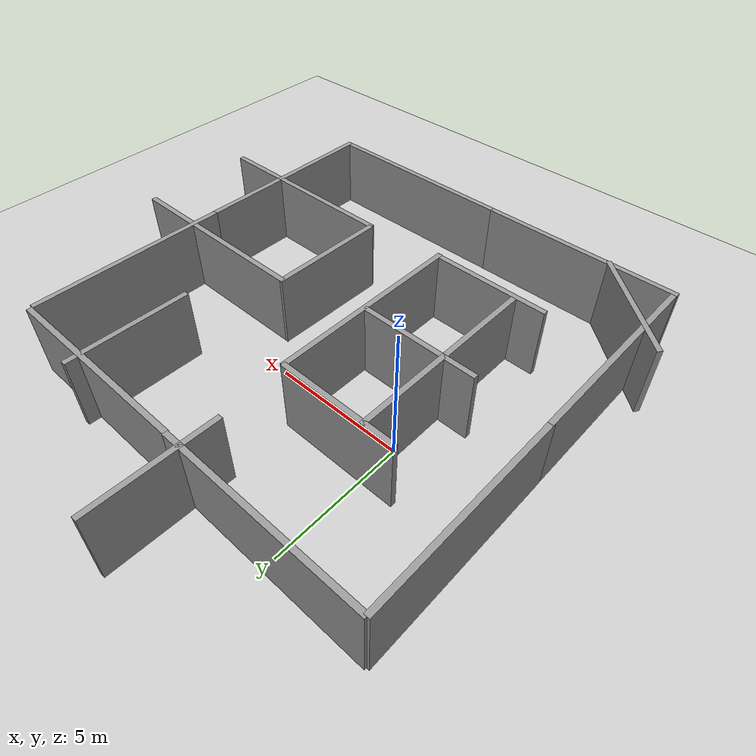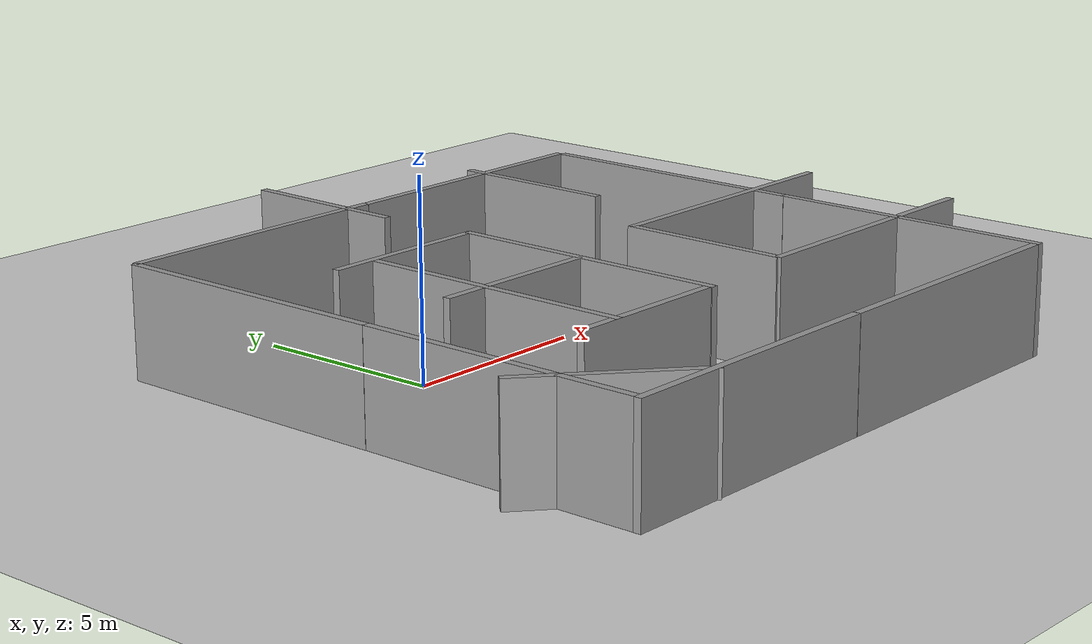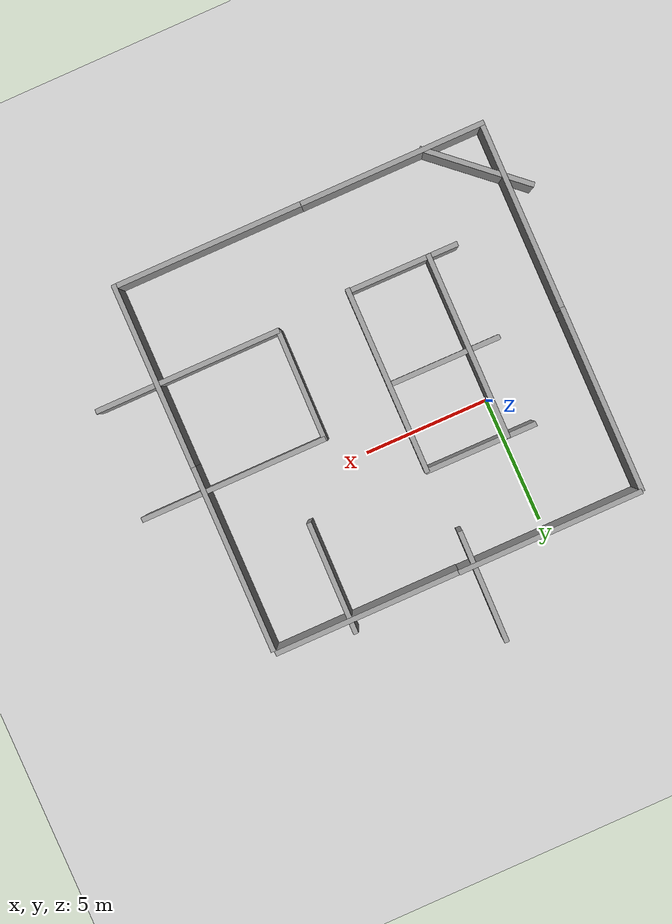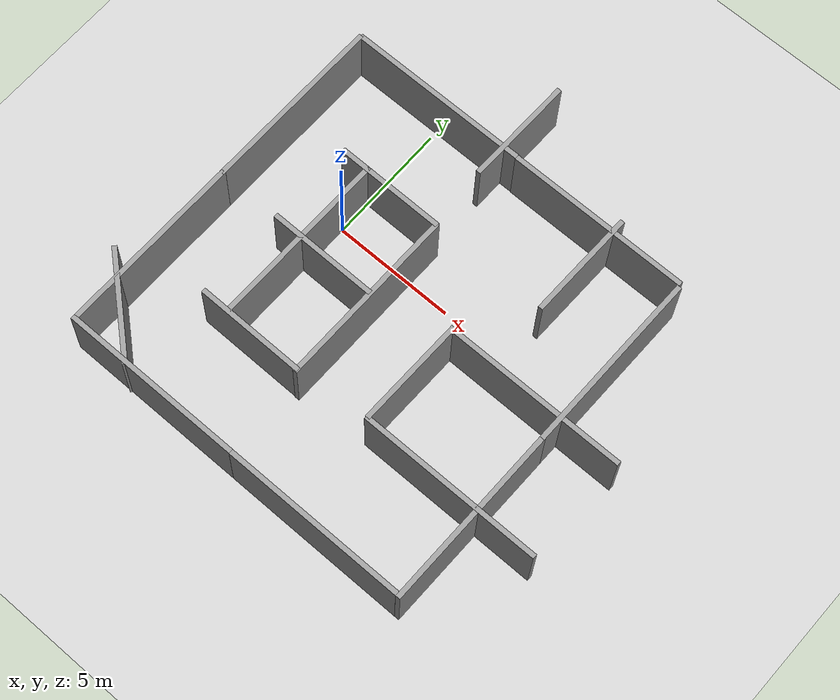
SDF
<sdf version="1.6">
 <world name="default">
  <light name="sun" type="directional">
   <pose>0 0 10 0 -0 0</pose>
   <diffuse>0.8 0.8 0.8 1</diffuse>
   <specular>0.2 0.2 0.2 1</specular>
   <attenuation>
    <range>1000</range>
    <constant>0.9</constant>
    <linear>0.01</linear>
    <quadratic>0.001</quadratic>
   </attenuation>
   <direction>-0.5 0.1 -0.9</direction>
  </light>
  <model name="ground_plane">
   <static>1</static>
   <link name="link">
    <collision name="collision">
     <geometry><plane><normal>0 0 1</normal><size>100 100</size></plane></geometry>
     <surface>
      <contact><collide_bitmask>65535</collide_bitmask></contact>
      <friction><ode><mu>100</mu><mu2>50</mu2></ode></friction>
     </surface>
    </collision>
    <visual name="visual">
     <cast_shadows>0</cast_shadows>
     <geometry><plane><normal>0 0 1</normal><size>100 100</size></plane></geometry>
     <material>
      <script><uri>file://media/materials/scripts/gazebo.material</uri><name>Gazebo/Grey</name></script>
     </material>
    </visual>
   </link>
  </model>
  <gravity>0 0 -9.8</gravity>
  <magnetic_field>6e-06 2.3e-05 -4.2e-05</magnetic_field>
  <atmosphere type="adiabatic"/>
  <physics name="default_physics" default="0" type="ode">
   <max_step_size>0.001</max_step_size>
   <real_time_factor>1</real_time_factor>
   <real_time_update_rate>1000</real_time_update_rate>
  </physics>
  <scene><ambient>0.4 0.4 0.4 1</ambient><background>0.7 0.7 0.7 1</background><shadows>1</shadows></scene>
  <audio><device>default</device></audio>
  <spherical_coordinates>
   <surface_model>EARTH_WGS84</surface_model>
   <latitude_deg>0</latitude_deg>
   <longitude_deg>0</longitude_deg>
   <elevation>0</elevation>
   <heading_deg>0</heading_deg>
  </spherical_coordinates>
  <model name="grey_wall">
   <static>1</static>
   <link name="link">
    <pose>0 0 1.4 0 -0 0</pose>
    <collision name="collision"><geometry><box><size>7.5 0.2 2.8</size></box></geometry></collision>
    <visual name="visual">
     <cast_shadows>0</cast_shadows>
     <geometry><box><size>7.5 0.2 2.8</size></box></geometry>
     <material>
      <script>
       <uri>model://grey_wall/materials/scripts</uri>
       <uri>model://grey_wall/materials/textures</uri>
       <name>vrc/grey_wall</name>
      </script>
     </material>
    </visual>
   </link>
   <pose>-0.088325 5.38933 0 0 -0 0</pose>
  </model>
  <model name="grey_wall_0">
   <static>1</static>
   <link name="link">
    <pose>0 0 1.4 0 -0 0</pose>
    <collision name="collision"><geometry><box><size>7.5 0.2 2.8</size></box></geometry></collision>
    <visual name="visual">
     <cast_shadows>0</cast_shadows>
     <geometry><box><size>7.5 0.2 2.8</size></box></geometry>
     <material>
      <script>
       <uri>model://grey_wall/materials/scripts</uri>
       <uri>model://grey_wall/materials/textures</uri>
       <name>vrc/grey_wall</name>
      </script>
     </material>
    </visual>
   </link>
   <pose>7.38796 5.37249 0 0 -0 0</pose>
  </model>
  <model name="grey_wall_1_clone_clone">
   <static>1</static>
   <link name="link">
    <pose>0 0 1.4 0 -0 0</pose>
    <collision name="collision"><geometry><box><size>7.5 0.2 2.8</size></box></geometry></collision>
    <visual name="visual">
     <cast_shadows>0</cast_shadows>
     <geometry><box><size>7.5 0.2 2.8</size></box></geometry>
     <material>
      <script>
       <uri>model://grey_wall/materials/scripts</uri>
       <uri>model://grey_wall/materials/textures</uri>
       <name>vrc/grey_wall</name>
      </script>
     </material>
    </visual>
   </link>
   <pose>-3.86179 1.65938 -0 0 -0 1.56317</pose>
  </model>
  <model name="grey_wall_1_clone_clone_0">
   <static>1</static>
   <link name="link">
    <pose>0 0 1.4 0 -0 0</pose>
    <collision name="collision"><geometry><box><size>7.5 0.2 2.8</size></box></geometry></collision>
    <visual name="visual">
     <cast_shadows>0</cast_shadows>
     <geometry><box><size>7.5 0.2 2.8</size></box></geometry>
     <material>
      <script>
       <uri>model://grey_wall/materials/scripts</uri>
       <uri>model://grey_wall/materials/textures</uri>
       <name>vrc/grey_wall</name>
      </script>
     </material>
    </visual>
   </link>
   <pose>-3.91378 -5.73656 -0 0 -0 1.56317</pose>
  </model>
  <model name="grey_wall_1_clone_clone_2">
   <static>1</static>
   <link name="link">
    <pose>0 0 1.4 0 -0 0</pose>
    <collision name="collision"><geometry><box><size>7.5 0.2 2.8</size></box></geometry></collision>
    <visual name="visual">
     <cast_shadows>0</cast_shadows>
     <geometry><box><size>7.5 0.2 2.8</size></box></geometry>
     <material>
      <script>
       <uri>model://grey_wall/materials/scripts</uri>
       <uri>model://grey_wall/materials/textures</uri>
       <name>vrc/grey_wall</name>
      </script>
     </material>
    </visual>
   </link>
   <pose>11.1345 1.51593 -0 0 -0 1.56317</pose>
  </model>
  <model name="grey_wall_1_clone_clone_3">
   <static>1</static>
   <link name="link">
    <pose>0 0 1.4 0 -0 0</pose>
    <collision name="collision"><geometry><box><size>7.5 0.2 2.8</size></box></geometry></collision>
    <visual name="visual">
     <cast_shadows>0</cast_shadows>
     <geometry><box><size>7.5 0.2 2.8</size></box></geometry>
     <material>
      <script>
       <uri>model://grey_wall/materials/scripts</uri>
       <uri>model://grey_wall/materials/textures</uri>
       <name>vrc/grey_wall</name>
      </script>
     </material>
    </visual>
   </link>
   <pose>11.0827 -5.9263 -0 0 -0 1.56317</pose>
  </model>
  <model name="grey_wall_0_clone">
   <static>1</static>
   <link name="link">
    <pose>0 0 1.4 0 -0 0</pose>
    <collision name="collision"><geometry><box><size>7.5 0.2 2.8</size></box></geometry></collision>
    <visual name="visual">
     <cast_shadows>0</cast_shadows>
     <geometry><box><size>7.5 0.2 2.8</size></box></geometry>
     <material>
      <script>
       <uri>model://grey_wall/materials/scripts</uri>
       <uri>model://grey_wall/materials/textures</uri>
       <name>vrc/grey_wall</name>
      </script>
     </material>
    </visual>
   </link>
   <pose>7.20499 -9.57988 0 0 -0 0</pose>
  </model>
  <model name="grey_wall_0_clone_0">
   <static>1</static>
   <link name="link">
    <pose>0 0 1.4 0 -0 0</pose>
    <collision name="collision"><geometry><box><size>7.5 0.2 2.8</size></box></geometry></collision>
    <visual name="visual">
     <cast_shadows>0</cast_shadows>
     <geometry><box><size>7.5 0.2 2.8</size></box></geometry>
     <material>
      <script>
       <uri>model://grey_wall/materials/scripts</uri>
       <uri>model://grey_wall/materials/textures</uri>
       <name>vrc/grey_wall</name>
      </script>
     </material>
    </visual>
   </link>
   <pose>-0.297747 -9.57626 0 0 -0 0</pose>
  </model>
  <model name="grey_wall_0_clone_2">
   <static>1</static>
   <link name="link">
    <pose>0 0 1.4 0 -0 0</pose>
    <collision name="collision"><geometry><box><size>7.5 0.2 2.8</size></box></geometry></collision>
    <visual name="visual">
     <cast_shadows>0</cast_shadows>
     <geometry><box><size>7.5 0.2 2.8</size></box></geometry>
     <material>
      <script>
       <uri>model://grey_wall/materials/scripts</uri>
       <uri>model://grey_wall/materials/textures</uri>
       <name>vrc/grey_wall</name>
      </script>
     </material>
    </visual>
   </link>
   <pose>9.83483 -5.60108 0 0 -0 0</pose>
  </model>
  <model name="grey_wall_0_clone_3">
   <static>1</static>
   <link name="link">
    <pose>0 0 1.4 0 -0 0</pose>
    <collision name="collision"><geometry><box><size>7.5 0.2 2.8</size></box></geometry></collision>
    <visual name="visual">
     <cast_shadows>0</cast_shadows>
     <geometry><box><size>7.5 0.2 2.8</size></box></geometry>
     <material>
      <script>
       <uri>model://grey_wall/materials/scripts</uri>
       <uri>model://grey_wall/materials/textures</uri>
       <name>vrc/grey_wall</name>
      </script>
     </material>
    </visual>
   </link>
   <pose>9.90655 -1.20844 0 0 -0 0</pose>
  </model>
  <model name="grey_wall_1_clone_clone_3_clone">
   <static>1</static>
   <link name="link">
    <pose>0 0 1.4 0 -0 0</pose>
    <collision name="collision"><geometry><box><size>7.5 0.2 2.8</size></box></geometry></collision>
    <visual name="visual">
     <cast_shadows>0</cast_shadows>
     <geometry><box><size>7.5 0.2 2.8</size></box></geometry>
     <material>
      <script>
       <uri>model://grey_wall/materials/scripts</uri>
       <uri>model://grey_wall/materials/textures</uri>
       <name>vrc/grey_wall</name>
      </script>
     </material>
    </visual>
   </link>
   <pose>3.17189 -2.24273 -0 0 -0 1.56317</pose>
  </model>
  <model name="grey_wall_1_clone_clone_3_clone_0_clone_0">
   <static>1</static>
   <link name="link">
    <pose>0 0 1.4 0 -0 0</pose>
    <collision name="collision"><geometry><box><size>7.5 0.2 2.8</size></box></geometry></collision>
    <visual name="visual">
     <cast_shadows>0</cast_shadows>
     <geometry><box><size>7.5 0.2 2.8</size></box></geometry>
     <material>
      <script>
       <uri>model://grey_wall/materials/scripts</uri>
       <uri>model://grey_wall/materials/textures</uri>
       <name>vrc/grey_wall</name>
      </script>
     </material>
    </visual>
   </link>
   <pose>-0.100653 -2.19519 -0 0 -0 1.56317</pose>
  </model>
  <model name="grey_wall_0_clone_4_clone">
   <link name="link">
    <pose>0 0 1.4 0 -0 0</pose>
    <inertial>
     <mass>1</mass>
     <inertia><ixx>1</ixx><ixy>0</ixy><ixz>0</ixz><iyy>1</iyy><iyz>0</iyz><izz>1</izz></inertia>
    </inertial>
    <visual name="visual">
     <cast_shadows>0</cast_shadows>
     <geometry><box><size>4.5 0.2 2.8</size></box></geometry>
     <material>
      <script>
       <uri>model://grey_wall/materials/scripts</uri>
       <uri>model://grey_wall/materials/textures</uri>
       <name>vrc/grey_wall</name>
      </script>
      <shader type="vertex"><normal_map>__default__</normal_map></shader>
      <ambient>1 1 1 1</ambient>
      <diffuse>1 1 1 1</diffuse>
      <specular>0 0 0 1</specular>
      <emissive>0 0 0 1</emissive>
     </material>
    </visual>
    <collision name="collision">
     <geometry><box><size>4.5 0.2 2.8</size></box></geometry>
     <surface>
      <friction>
       <ode><mu>1</mu><mu2>1</mu2><fdir1>0 0 0</fdir1><slip1>0</slip1><slip2>0</slip2></ode>
       <torsional>
        <coefficient>1</coefficient>
        <patch_radius>0</patch_radius>
        <surface_radius>0</surface_radius>
        <use_patch_radius>1</use_patch_radius>
        <ode><slip>0</slip></ode>
       </torsional>
      </friction>
      <bounce><restitution_coefficient>0</restitution_coefficient><threshold>1e+06</threshold></bounce>
      <contact>
       <collide_without_contact>0</collide_without_contact>
       <collide_without_contact_bitmask>1</collide_without_contact_bitmask>
       <collide_bitmask>1</collide_bitmask>
       <ode>
        <soft_cfm>0</soft_cfm>
        <soft_erp>0.2</soft_erp>
        <kp>1e+13</kp>
        <kd>1</kd>
        <max_vel>0.01</max_vel>
        <min_depth>0</min_depth>
       </ode>
       <bullet>
        <split_impulse>1</split_impulse>
        <split_impulse_penetration_threshold>-0.01</split_impulse_penetration_threshold>
        <soft_cfm>0</soft_cfm>
        <soft_erp>0.2</soft_erp>
        <kp>1e+13</kp>
        <kd>1</kd>
       </bullet>
      </contact>
     </surface>
    </collision>
   </link>
   <static>1</static>
   <pose>0.996216 1.46694 -0 0 -0 3.1349</pose>
  </model>
  <model name="grey_wall_0_clone_4_clone_clone">
   <link name="link">
    <pose>0 0 1.4 0 -0 0</pose>
    <inertial>
     <mass>1</mass>
     <inertia><ixx>1</ixx><ixy>0</ixy><ixz>0</ixz><iyy>1</iyy><iyz>0</iyz><izz>1</izz></inertia>
    </inertial>
    <visual name="visual">
     <cast_shadows>0</cast_shadows>
     <geometry><box><size>4.5 0.2 2.8</size></box></geometry>
     <material>
      <script>
       <uri>model://grey_wall/materials/scripts</uri>
       <uri>model://grey_wall/materials/textures</uri>
       <name>vrc/grey_wall</name>
      </script>
      <shader type="vertex"><normal_map>__default__</normal_map></shader>
      <ambient>1 1 1 1</ambient>
      <diffuse>1 1 1 1</diffuse>
      <specular>0 0 0 1</specular>
      <emissive>0 0 0 1</emissive>
     </material>
    </visual>
    <collision name="collision">
     <geometry><box><size>4.5 0.2 2.8</size></box></geometry>
     <surface>
      <friction>
       <ode><mu>1</mu><mu2>1</mu2><fdir1>0 0 0</fdir1><slip1>0</slip1><slip2>0</slip2></ode>
       <torsional>
        <coefficient>1</coefficient>
        <patch_radius>0</patch_radius>
        <surface_radius>0</surface_radius>
        <use_patch_radius>1</use_patch_radius>
        <ode><slip>0</slip></ode>
       </torsional>
      </friction>
      <bounce><restitution_coefficient>0</restitution_coefficient><threshold>1e+06</threshold></bounce>
      <contact>
       <collide_without_contact>0</collide_without_contact>
       <collide_without_contact_bitmask>1</collide_without_contact_bitmask>
       <collide_bitmask>1</collide_bitmask>
       <ode>
        <soft_cfm>0</soft_cfm>
        <soft_erp>0.2</soft_erp>
        <kp>1e+13</kp>
        <kd>1</kd>
        <max_vel>0.01</max_vel>
        <min_depth>0</min_depth>
       </ode>
       <bullet>
        <split_impulse>1</split_impulse>
        <split_impulse_penetration_threshold>-0.01</split_impulse_penetration_threshold>
        <soft_cfm>0</soft_cfm>
        <soft_erp>0.2</soft_erp>
        <kp>1e+13</kp>
        <kd>1</kd>
       </bullet>
      </contact>
     </surface>
    </collision>
   </link>
   <static>1</static>
   <pose>0.947046 -5.85727 -0 0 -0 3.1349</pose>
  </model>
  <model name="grey_wall_0_clone_4_clone_clone_clone">
   <link name="link">
    <pose>0 0 1.4 0 -0 0</pose>
    <inertial>
     <mass>1</mass>
     <inertia><ixx>1</ixx><ixy>0</ixy><ixz>0</ixz><iyy>1</iyy><iyz>0</iyz><izz>1</izz></inertia>
    </inertial>
    <visual name="visual">
     <cast_shadows>0</cast_shadows>
     <geometry><box><size>4.5 0.2 2.8</size></box></geometry>
     <material>
      <script>
       <uri>model://grey_wall/materials/scripts</uri>
       <uri>model://grey_wall/materials/textures</uri>
       <name>vrc/grey_wall</name>
      </script>
      <shader type="vertex"><normal_map>__default__</normal_map></shader>
      <ambient>1 1 1 1</ambient>
      <diffuse>1 1 1 1</diffuse>
      <specular>0 0 0 1</specular>
      <emissive>0 0 0 1</emissive>
     </material>
    </visual>
    <collision name="collision">
     <geometry><box><size>4.5 0.2 2.8</size></box></geometry>
     <surface>
      <friction>
       <ode><mu>1</mu><mu2>1</mu2><fdir1>0 0 0</fdir1><slip1>0</slip1><slip2>0</slip2></ode>
       <torsional>
        <coefficient>1</coefficient>
        <patch_radius>0</patch_radius>
        <surface_radius>0</surface_radius>
        <use_patch_radius>1</use_patch_radius>
        <ode><slip>0</slip></ode>
       </torsional>
      </friction>
      <bounce><restitution_coefficient>0</restitution_coefficient><threshold>1e+06</threshold></bounce>
      <contact>
       <collide_without_contact>0</collide_without_contact>
       <collide_without_contact_bitmask>1</collide_without_contact_bitmask>
       <collide_bitmask>1</collide_bitmask>
       <ode>
        <soft_cfm>0</soft_cfm>
        <soft_erp>0.2</soft_erp>
        <kp>1e+13</kp>
        <kd>1</kd>
        <max_vel>0.01</max_vel>
        <min_depth>0</min_depth>
       </ode>
       <bullet>
        <split_impulse>1</split_impulse>
        <split_impulse_penetration_threshold>-0.01</split_impulse_penetration_threshold>
        <soft_cfm>0</soft_cfm>
        <soft_erp>0.2</soft_erp>
        <kp>1e+13</kp>
        <kd>1</kd>
       </bullet>
      </contact>
     </surface>
    </collision>
   </link>
   <static>1</static>
   <pose>8.04654 3.66284 0 0 0 -1.58661</pose>
  </model>
  <model name="grey_wall_0_clone_4_clone_clone_clone_clone">
   <link name="link">
    <pose>0 0 1.4 0 -0 0</pose>
    <inertial>
     <mass>1</mass>
     <inertia><ixx>1</ixx><ixy>0</ixy><ixz>0</ixz><iyy>1</iyy><iyz>0</iyz><izz>1</izz></inertia>
    </inertial>
    <visual name="visual">
     <cast_shadows>0</cast_shadows>
     <geometry><box><size>4.5 0.2 2.8</size></box></geometry>
     <material>
      <script>
       <uri>model://grey_wall/materials/scripts</uri>
       <uri>model://grey_wall/materials/textures</uri>
       <name>vrc/grey_wall</name>
      </script>
      <shader type="vertex"><normal_map>__default__</normal_map></shader>
      <ambient>1 1 1 1</ambient>
      <diffuse>1 1 1 1</diffuse>
      <specular>0 0 0 1</specular>
      <emissive>0 0 0 1</emissive>
     </material>
    </visual>
    <collision name="collision">
     <geometry><box><size>4.5 0.2 2.8</size></box></geometry>
     <surface>
      <friction>
       <ode><mu>1</mu><mu2>1</mu2><fdir1>0 0 0</fdir1><slip1>0</slip1><slip2>0</slip2></ode>
       <torsional>
        <coefficient>1</coefficient>
        <patch_radius>0</patch_radius>
        <surface_radius>0</surface_radius>
        <use_patch_radius>1</use_patch_radius>
        <ode><slip>0</slip></ode>
       </torsional>
      </friction>
      <bounce><restitution_coefficient>0</restitution_coefficient><threshold>1e+06</threshold></bounce>
      <contact>
       <collide_without_contact>0</collide_without_contact>
       <collide_without_contact_bitmask>1</collide_without_contact_bitmask>
       <collide_bitmask>1</collide_bitmask>
       <ode>
        <soft_cfm>0</soft_cfm>
        <soft_erp>0.2</soft_erp>
        <kp>1e+13</kp>
        <kd>1</kd>
        <max_vel>0.01</max_vel>
        <min_depth>0</min_depth>
       </ode>
       <bullet>
        <split_impulse>1</split_impulse>
        <split_impulse_penetration_threshold>-0.01</split_impulse_penetration_threshold>
        <soft_cfm>0</soft_cfm>
        <soft_erp>0.2</soft_erp>
        <kp>1e+13</kp>
        <kd>1</kd>
       </bullet>
      </contact>
     </surface>
    </collision>
   </link>
   <static>1</static>
   <pose>6.17199 -3.35794 0 0 0 -1.58661</pose>
  </model>
  <model name="grey_wall_0_clone_4_clone_clone_clone_clone_0">
   <link name="link">
    <pose>0 0 1.4 0 -0 0</pose>
    <inertial>
     <mass>1</mass>
     <inertia><ixx>1</ixx><ixy>0</ixy><ixz>0</ixz><iyy>1</iyy><iyz>0</iyz><izz>1</izz></inertia>
    </inertial>
    <visual name="visual">
     <cast_shadows>0</cast_shadows>
     <geometry><box><size>4.5 0.2 2.8</size></box></geometry>
     <material>
      <script>
       <uri>model://grey_wall/materials/scripts</uri>
       <uri>model://grey_wall/materials/textures</uri>
       <name>vrc/grey_wall</name>
      </script>
      <shader type="vertex"><normal_map>__default__</normal_map></shader>
      <ambient>1 1 1 1</ambient>
      <diffuse>1 1 1 1</diffuse>
      <specular>0 0 0 1</specular>
      <emissive>0 0 0 1</emissive>
     </material>
    </visual>
    <collision name="collision">
     <geometry><box><size>4.5 0.2 2.8</size></box></geometry>
     <surface>
      <friction>
       <ode><mu>1</mu><mu2>1</mu2><fdir1>0 0 0</fdir1><slip1>0</slip1><slip2>0</slip2></ode>
       <torsional>
        <coefficient>1</coefficient>
        <patch_radius>0</patch_radius>
        <surface_radius>0</surface_radius>
        <use_patch_radius>1</use_patch_radius>
        <ode><slip>0</slip></ode>
       </torsional>
      </friction>
      <bounce><restitution_coefficient>0</restitution_coefficient><threshold>1e+06</threshold></bounce>
      <contact>
       <collide_without_contact>0</collide_without_contact>
       <collide_without_contact_bitmask>1</collide_without_contact_bitmask>
       <collide_bitmask>1</collide_bitmask>
       <ode>
        <soft_cfm>0</soft_cfm>
        <soft_erp>0.2</soft_erp>
        <kp>1e+13</kp>
        <kd>1</kd>
        <max_vel>0.01</max_vel>
        <min_depth>0</min_depth>
       </ode>
       <bullet>
        <split_impulse>1</split_impulse>
        <split_impulse_penetration_threshold>-0.01</split_impulse_penetration_threshold>
        <soft_cfm>0</soft_cfm>
        <soft_erp>0.2</soft_erp>
        <kp>1e+13</kp>
        <kd>1</kd>
       </bullet>
      </contact>
     </surface>
    </collision>
   </link>
   <static>1</static>
   <pose>-3.12535 -8.17404 0 0 0 -0.724889</pose>
  </model>
  <model name="grey_wall_0_clone_4_clone_clone_clone_0">
   <link name="link">
    <pose>0 0 1.4 0 -0 0</pose>
    <inertial>
     <mass>1</mass>
     <inertia><ixx>1</ixx><ixy>0</ixy><ixz>0</ixz><iyy>1</iyy><iyz>0</iyz><izz>1</izz></inertia>
    </inertial>
    <visual name="visual">
     <cast_shadows>0</cast_shadows>
     <geometry><box><size>4.5 0.2 2.8</size></box></geometry>
     <material>
      <script>
       <uri>model://grey_wall/materials/scripts</uri>
       <uri>model://grey_wall/materials/textures</uri>
       <name>vrc/grey_wall</name>
      </script>
      <shader type="vertex"><normal_map>__default__</normal_map></shader>
      <ambient>1 1 1 1</ambient>
      <diffuse>1 1 1 1</diffuse>
      <specular>0 0 0 1</specular>
      <emissive>0 0 0 1</emissive>
     </material>
    </visual>
    <collision name="collision">
     <geometry><box><size>4.5 0.2 2.8</size></box></geometry>
     <surface>
      <friction>
       <ode><mu>1</mu><mu2>1</mu2><fdir1>0 0 0</fdir1><slip1>0</slip1><slip2>0</slip2></ode>
       <torsional>
        <coefficient>1</coefficient>
        <patch_radius>0</patch_radius>
        <surface_radius>0</surface_radius>
        <use_patch_radius>1</use_patch_radius>
        <ode><slip>0</slip></ode>
       </torsional>
      </friction>
      <bounce><restitution_coefficient>0</restitution_coefficient><threshold>1e+06</threshold></bounce>
      <contact>
       <collide_without_contact>0</collide_without_contact>
       <collide_without_contact_bitmask>1</collide_without_contact_bitmask>
       <collide_bitmask>1</collide_bitmask>
       <ode>
        <soft_cfm>0</soft_cfm>
        <soft_erp>0.2</soft_erp>
        <kp>1e+13</kp>
        <kd>1</kd>
        <max_vel>0.01</max_vel>
        <min_depth>0</min_depth>
       </ode>
       <bullet>
        <split_impulse>1</split_impulse>
        <split_impulse_penetration_threshold>-0.01</split_impulse_penetration_threshold>
        <soft_cfm>0</soft_cfm>
        <soft_erp>0.2</soft_erp>
        <kp>1e+13</kp>
        <kd>1</kd>
       </bullet>
      </contact>
     </surface>
    </collision>
   </link>
   <static>1</static>
   <pose>0.914328 -2.04955 0 0 -0 3.1349</pose>
  </model>
  <model name="grey_wall_0_clone_4_clone_clone_clone_clone_1">
   <link name="link">
    <pose>0 0 1.4 0 -0 0</pose>
    <inertial>
     <mass>1</mass>
     <inertia><ixx>1</ixx><ixy>0</ixy><ixz>0</ixz><iyy>1</iyy><iyz>0</iyz><izz>1</izz></inertia>
    </inertial>
    <visual name="visual">
     <cast_shadows>0</cast_shadows>
     <geometry><box><size>4.5 0.2 2.8</size></box></geometry>
     <material>
      <script>
       <uri>model://grey_wall/materials/scripts</uri>
       <uri>model://grey_wall/materials/textures</uri>
       <name>vrc/grey_wall</name>
      </script>
      <shader type="vertex"><normal_map>__default__</normal_map></shader>
      <ambient>1 1 1 1</ambient>
      <diffuse>1 1 1 1</diffuse>
      <specular>0 0 0 1</specular>
      <emissive>0 0 0 1</emissive>
     </material>
    </visual>
    <collision name="collision">
     <geometry><box><size>4.5 0.2 2.8</size></box></geometry>
     <surface>
      <friction>
       <ode><mu>1</mu><mu2>1</mu2><fdir1>0 0 0</fdir1><slip1>0</slip1><slip2>0</slip2></ode>
       <torsional>
        <coefficient>1</coefficient>
        <patch_radius>0</patch_radius>
        <surface_radius>0</surface_radius>
        <use_patch_radius>1</use_patch_radius>
        <ode><slip>0</slip></ode>
       </torsional>
      </friction>
      <bounce><restitution_coefficient>0</restitution_coefficient><threshold>1e+06</threshold></bounce>
      <contact>
       <collide_without_contact>0</collide_without_contact>
       <collide_without_contact_bitmask>1</collide_without_contact_bitmask>
       <collide_bitmask>1</collide_bitmask>
       <ode>
        <soft_cfm>0</soft_cfm>
        <soft_erp>0.2</soft_erp>
        <kp>1e+13</kp>
        <kd>1</kd>
        <max_vel>0.01</max_vel>
        <min_depth>0</min_depth>
       </ode>
       <bullet>
        <split_impulse>1</split_impulse>
        <split_impulse_penetration_threshold>-0.01</split_impulse_penetration_threshold>
        <soft_cfm>0</soft_cfm>
        <soft_erp>0.2</soft_erp>
        <kp>1e+13</kp>
        <kd>1</kd>
       </bullet>
      </contact>
     </surface>
    </collision>
   </link>
   <static>1</static>
   <pose>3.02884 6.2432 0 0 0 -1.58661</pose>
  </model>
 </world>
</sdf>
